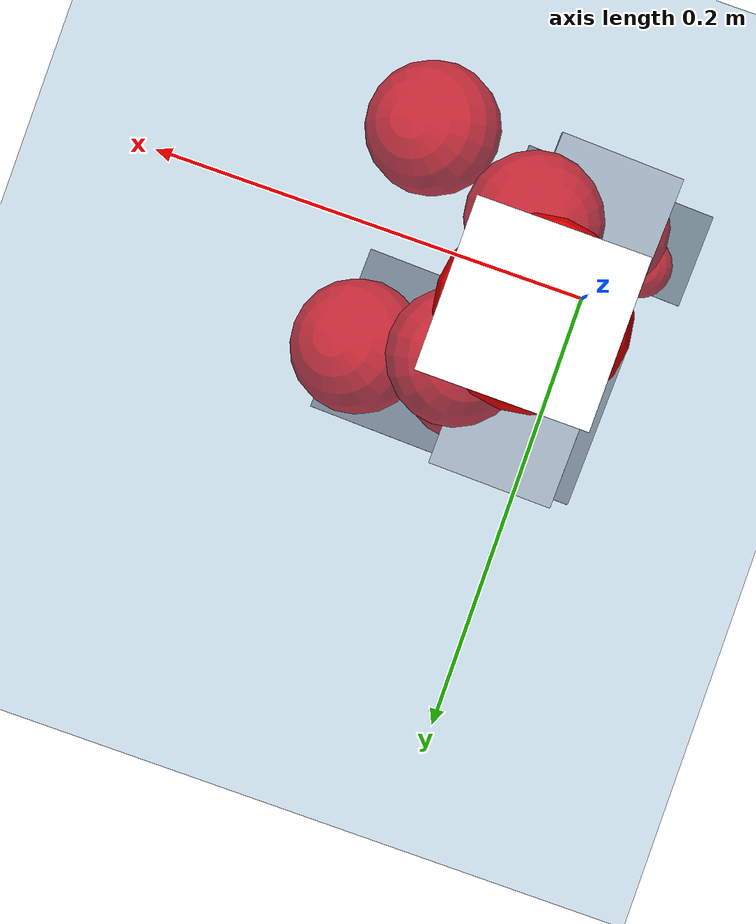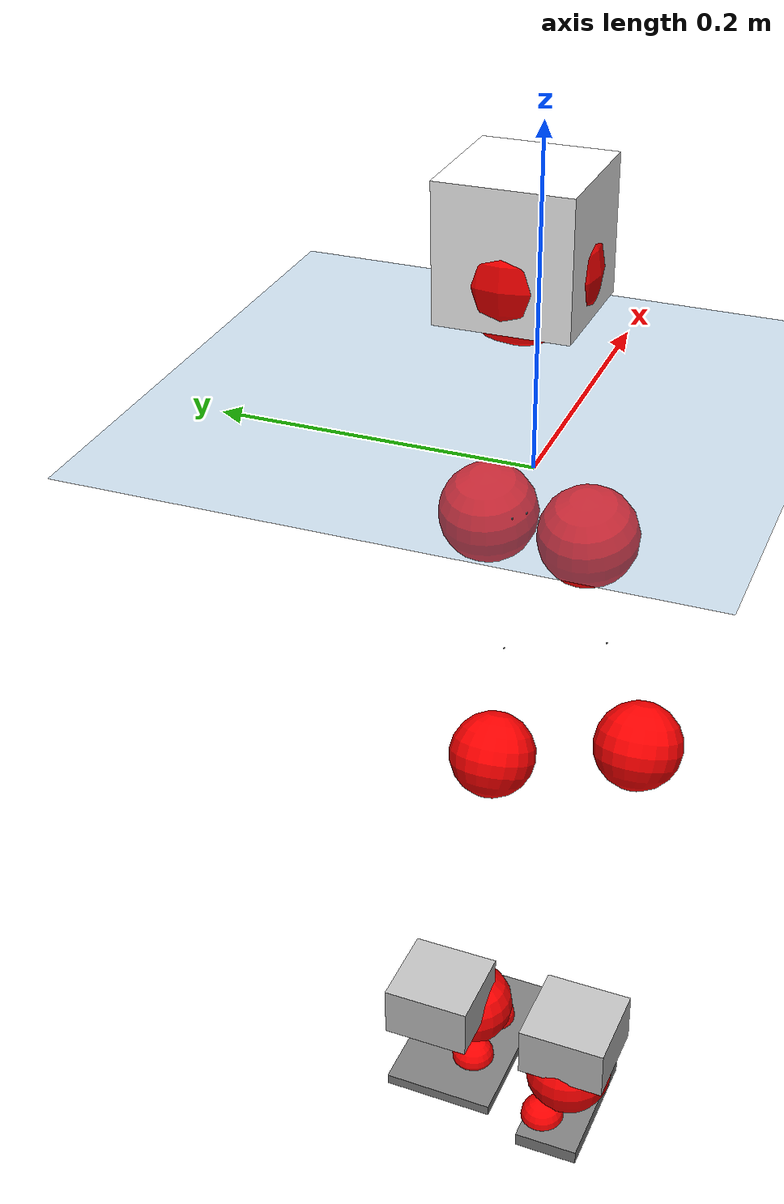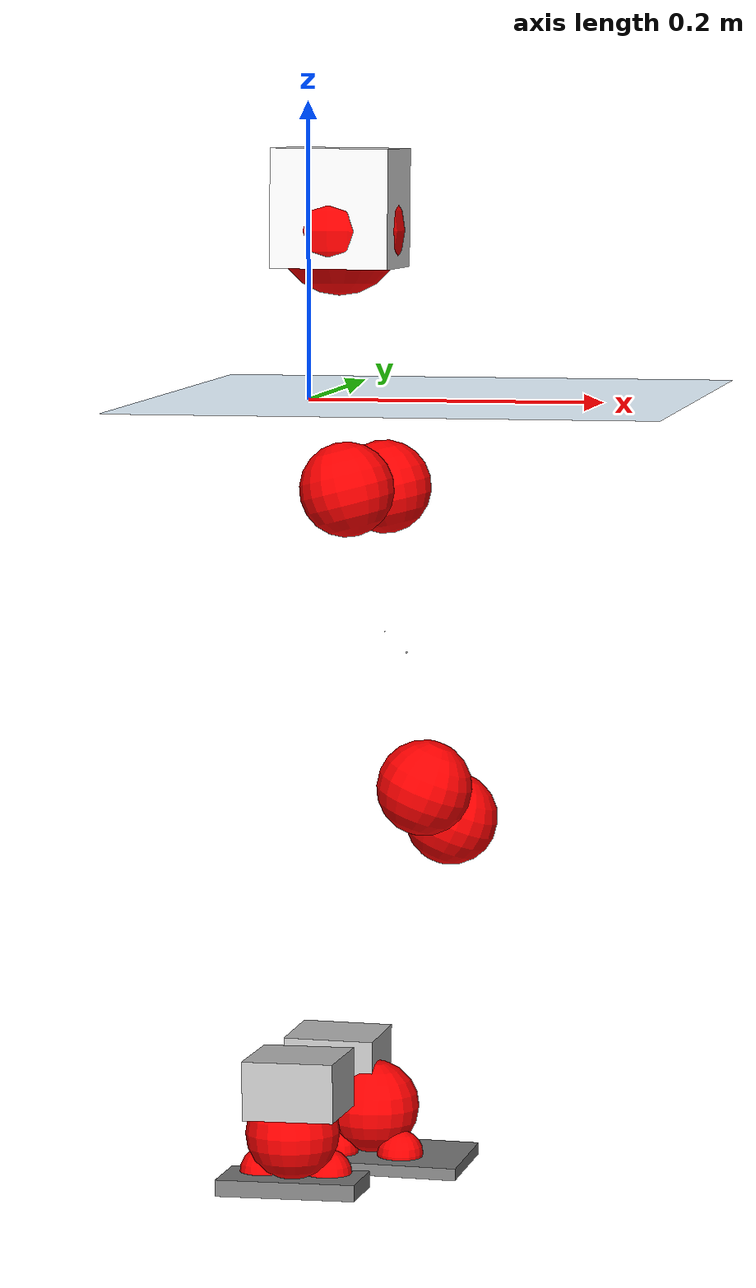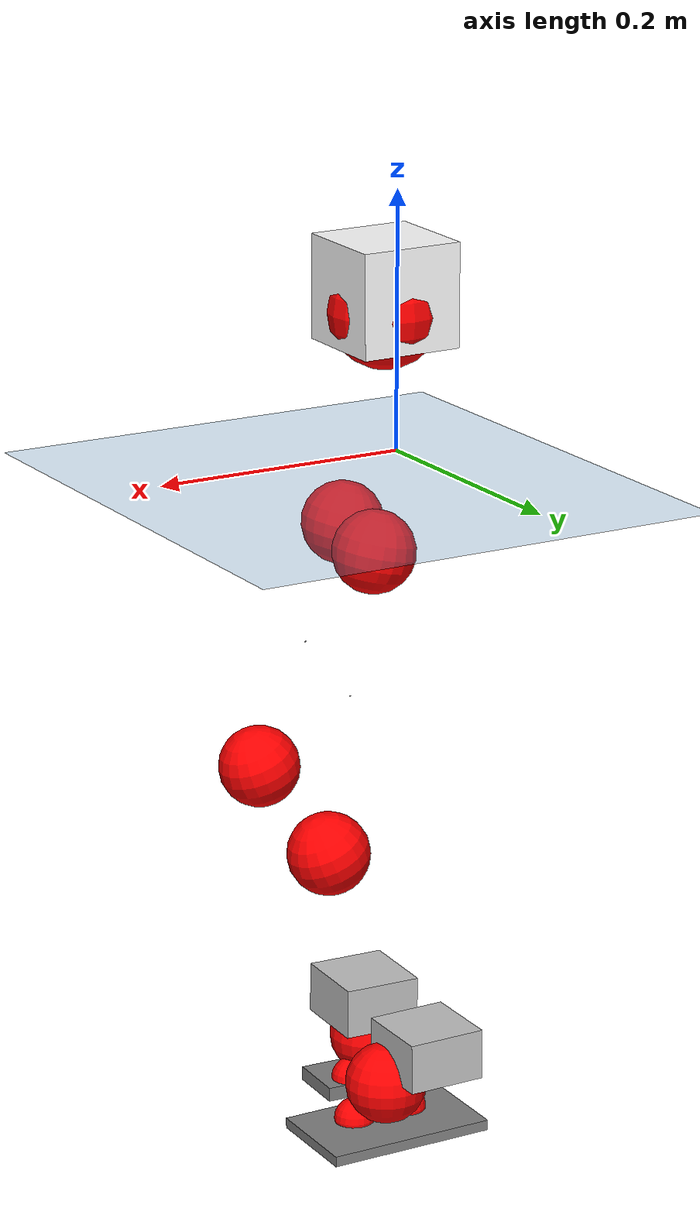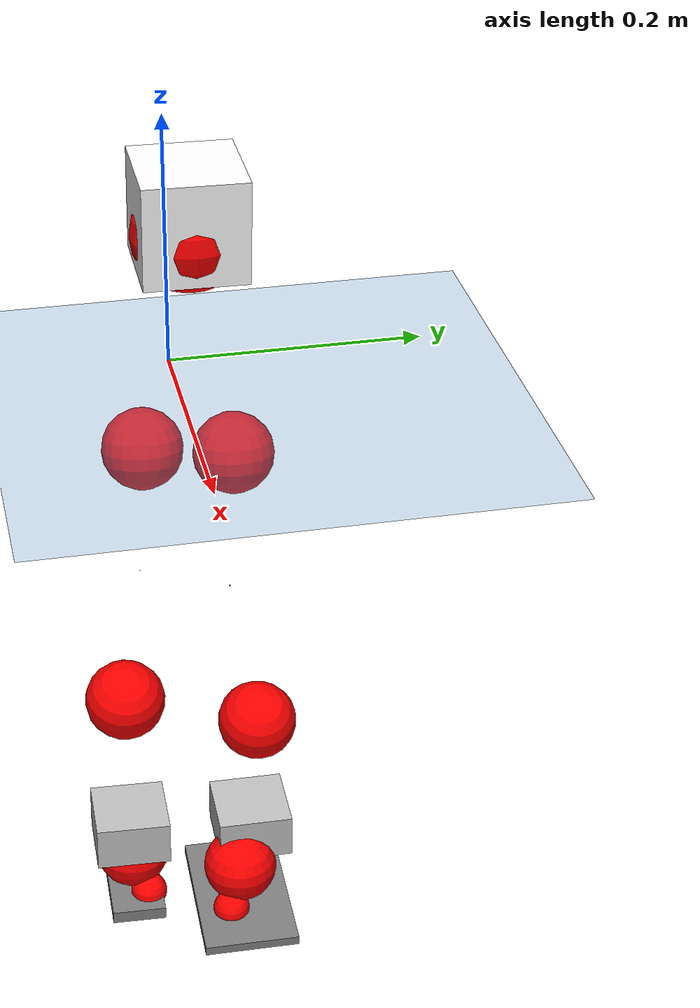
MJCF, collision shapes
<mujoco model="pi_12dof_release_v1">
  <compiler angle="radian" assetdir="assets" balanceinertia="true" inertiafromgeom="false"/>

  <option timestep="0.005" density="1.2" viscosity="2e-05"/>

  <size nkey="1"/>

  <visual>
    <quality shadowsize="8192"/>
    <map shadowclip="0.5"/>
  </visual>

  <default>
    <default class="/">
      <joint armature="0.01" damping="0.01" frictionloss="0.01"/>
      <geom contype="0" conaffinity="0" group="1" solref="-1000 -80"/>
      <site size="0.01 0.005 0.005" group="5"/>
      <general forcelimited="true" biastype="affine" gainprm="20" biasprm="0 -20 -0.5"/>
      <default class="foot">
        <geom size="0.0845 0.036 0.005" type="box" condim="6" group="4" priority="1" friction="0.9 0.2 0.2" solimp="0.015 1 0.005"/>
      </default>
      <default class="reward_collision_sphere">
        <geom group="5" rgba="1 0 0 1"/>
      </default>
    </default>
  </default>

  <asset>
    <texture type="skybox" colorspace="auto" name="//unnamed_texture_0" builtin="gradient" rgb1="0.95 0.95 0.95" rgb2="0.95 0.95 0.95" width="100" height="600"/>
    <texture type="2d" colorspace="auto" name="texplane" builtin="checker" rgb1="0.345 0.575 0.748" rgb2="0.345 0.575 0.748" markrgb="1 1 1" width="512" height="512"/>
    <material name="MatPlane" class="/" texture="texplane" texuniform="true" texrepeat="2 2" specular="0.9"/>
    <mesh name="baselink_1" class="/" file="baselink_1.STL"/>
    <mesh name="r_hip_pitch_link" class="/" file="r_hip_pitch_link.STL"/>
    <mesh name="r_hip_roll_link" class="/" file="r_hip_roll_link.STL"/>
    <mesh name="r_thigh_link" class="/" file="r_thigh_link.STL"/>
    <mesh name="r_calf_link" class="/" file="r_calf_link.STL"/>
    <mesh name="r_ankle_pitch_link" class="/" file="r_ankle_pitch_link.STL"/>
    <mesh name="r_ankle_roll_link" class="/" file="r_ankle_roll_link.STL"/>
    <mesh name="l_hip_pitch_link" class="/" file="l_hip_pitch_link.STL"/>
    <mesh name="l_hip_roll_link" class="/" file="l_hip_roll_link.STL"/>
    <mesh name="l_thigh_link" class="/" file="l_thigh_link.STL"/>
    <mesh name="l_calf_link" class="/" file="l_calf_link.STL"/>
    <mesh name="l_ankle_pitch_link" class="/" file="l_ankle_pitch_link.STL"/>
    <mesh name="l_ankle_roll_link" class="/" file="l_ankle_roll_link.STL"/>
  </asset>

  <worldbody>
    <geom name="floor" class="/" size="100 100 0.125" type="plane" group="0" material="MatPlane"/>
    <light name="toplight_shadow" class="/" pos="0 0 5" dir="0.0990148 0.0990148 -0.990148" type="directional" ambient="0.04 0.04 0.04" diffuse="0.55 0.55 0.55" specular="0.12 0.12 0.12"/>
    <light name="toplight_fill" class="/" pos="0 0 5" dir="0.0990148 0.0990148 -0.990148" type="directional" castshadow="false" ambient="0.04 0.04 0.04" diffuse="0.3 0.3 0.3" specular="0.08 0.08 0.08"/>
    <body name="trunk" pos="0.0178856 0.0136846 0.00976025" quat="0.999971 -0.00449368 0.00465422 -0.00403354">
      <inertial pos="0.019391 0.00491472 0.0640027" quat="0.719963 -0.0204759 0.0225988 0.693342" mass="1.02495" diaginertia="4.88763e-05 0.000571645 0.0246425"/>
      <joint name="//unnamed_joint_0" type="free"/>
      <geom name="//unnamed_geom_1" class="/" type="mesh" density="0" rgba="1 1 1 1" mesh="baselink_1"/>
      <geom name="//unnamed_geom_2" class="/" size="0.0399662 0.0399662 0.0399662" pos="0 0 0.118563" type="box" rgba="1 1 1 1"/>
      <geom name="//unnamed_geom_3" class="reward_collision_sphere" size="0.0439629" pos="0 0 0.103743"/>
      <site name="imu" class="/" pos="-0.0189384 -0.046969 0.0407778" size="0.00799325"/>
      <camera name="track" class="/" pos="0 -1.15779 0" quat="0.707107 0.707107 0 0" mode="trackcom"/>
      <camera name="ego_camera" class="/" pos="0.0252779 0 0.266767" quat="-0.5 -0.5 0.5 0.5"/>
      <body name="r_hip_pitch_link" pos="0.012509 -0.000682734 -0.0587571" quat="0.99111 -0.00219098 -0.133011 -0.00210592">
        <inertial pos="0.0191238 -0.0205186 0.0111925" quat="-0.0345667 0.702616 -0.0437736 0.70938" mass="0.1618" diaginertia="4.06475e-07 6.17746e-06 0.000404086"/>
        <joint name="r_hip_pitch_joint" class="/" pos="0 0 0" axis="-0.0676313 -0.997689 0.00660729" stiffness="0.0884049" range="-1.70011 1.07411" armature="0.00803735" damping="0.00240004" frictionloss="0.00244787"/>
        <geom name="//unnamed_geom_4" class="/" type="mesh" density="0" rgba="0.75294 0.75294 0.75294 1" mesh="r_hip_pitch_link"/>
        <geom name="//unnamed_geom_5" class="/" size="0.000399662 0.000399662 0.000399662" type="box" rgba="0.75294 0.75294 0.75294 1"/>
        <body name="r_hip_roll_link" pos="-0.000637218 -0.0391727 -0.00953067" quat="0.999998 -0.00139681 0.000528935 -0.000942022">
          <inertial pos="-0.0184434 -0.00507829 -0.106741" quat="0.706686 -0.084663 -0.0593254 0.699934" mass="0.210598" diaginertia="1.49629e-06 1.57144e-05 0.000994926"/>
          <joint name="r_hip_roll_joint" class="/" pos="0 0 0" axis="-0.999937 0.00325329 -0.01078" range="0.189377 0.269708" armature="0.015472" damping="0.0710598" frictionloss="0.0064184"/>
          <geom name="//unnamed_geom_6" class="/" type="mesh" density="0" rgba="0.75294 0.75294 0.75294 1" mesh="r_hip_roll_link"/>
          <geom name="//unnamed_geom_7" class="/" size="0.000399662 0.000399662 0.000399662" type="box" rgba="0.75294 0.75294 0.75294 1"/>
          <geom name="//unnamed_geom_8" class="reward_collision_sphere" size="0.031973"/>
          <body name="r_thigh_link" pos="0.0027778 -0.00728456 -0.097885" quat="0.999979 -0.000746187 -0.00296087 -0.00576276">
            <inertial pos="-0.0122589 -0.0107689 -0.0561386" quat="0.764312 0.641126 -0.0429215 -0.054238" mass="0.051055" diaginertia="5.97507e-07 5.23322e-06 0.000477382"/>
            <joint name="r_thigh_joint" class="/" pos="0 0 0" axis="-0.00776016 0.0740786 -0.997222" stiffness="0.0888049" range="-0.265826 0.334433" armature="0.0150236" damping="0" frictionloss="0.00981261"/>
            <geom name="//unnamed_geom_9" class="/" type="mesh" density="0" rgba="0.75294 0.75294 0.75294 1" mesh="r_thigh_link"/>
            <geom name="//unnamed_geom_10" class="/" size="0.000399662 0.000399662 0.000399662" type="box" rgba="0.75294 0.75294 0.75294 1"/>
            <body name="r_calf_link" pos="0.00329666 -0.0173871 -0.106417" quat="0.94785 0.00496783 0.318671 0.0018887">
              <inertial pos="-0.0150195 -0.00880432 -0.103602" quat="0.999863 0.0103995 0.00872965 -0.00946947" mass="0.258916" diaginertia="1.37105e-05 0.000206071 0.00120144"/>
              <joint name="r_calf_joint" class="/" pos="0 0 0" axis="-0.00872815 -0.999916 -0.00961161" range="-1.55711 0.971525" armature="0" damping="0.0785855" frictionloss="0.00046736"/>
              <geom name="//unnamed_geom_11" class="/" type="mesh" density="0" rgba="0.75294 0.75294 0.75294 1" mesh="r_calf_link"/>
              <geom name="//unnamed_geom_12" class="/" size="0.000399662 0.000399662 0.000399662" type="box" rgba="0.75294 0.75294 0.75294 1"/>
              <geom name="//unnamed_geom_13" class="reward_collision_sphere" size="0.031973"/>
              <body name="r_ankle_pitch_link" pos="-0.00440581 0.0082661 -0.22396" quat="0.980543 -0.00358344 -0.196126 -0.00755482">
                <inertial pos="0.0155555 0.0206221 0.00832579" quat="-0.00521038 0.70452 0.0268965 0.709155" mass="0.124147" diaginertia="1.44159e-06 1.81949e-05 0.00113818"/>
                <joint name="r_ankle_pitch_joint" class="/" pos="0 0 0" axis="0.0920745 -0.995682 0.0118132" stiffness="0.0876477" range="-0.993891 0.207744" armature="0.0100298" damping="0" frictionloss="0.0133633"/>
                <geom name="//unnamed_geom_14" class="/" type="mesh" density="0" rgba="0.75294 0.75294 0.75294 1" mesh="r_ankle_pitch_link"/>
                <geom name="//unnamed_geom_15" class="/" size="0.0311737 0.031973 0.0199831" type="box" rgba="0.75294 0.75294 0.75294 1"/>
                <body name="r_ankle_roll_link" pos="0.0121205 0.00206692 -0.00381625" quat="1 0.000381611 -0.000217015 0.000627433">
                  <inertial pos="-0.0194864 0.00191078 -0.0131992" quat="0.542792 0.425183 0.429598 0.583131" mass="0.192183" diaginertia="3.18149e-06 6.356e-05 0.00154747"/>
                  <joint name="r_ankle_roll_joint" class="/" pos="0 0 0" axis="-0.995027 0.021581 0.0972388" range="-0.050105 0.464042" armature="0.00595934" damping="0.0617676" frictionloss="0.00665007"/>
                  <geom name="//unnamed_geom_16" class="/" type="mesh" density="0" rgba="0.75294 0.75294 0.75294 1" mesh="r_ankle_roll_link"/>
                  <geom name="//unnamed_geom_17" class="/" type="mesh" rgba="0.75294 0.75294 0.75294 1" mesh="r_ankle_roll_link"/>
                  <geom name="right_foot" class="foot" size="0.0481166 0.0232456 0.00558714" pos="-0.017189 0 -0.0652097"/>
                  <geom name="//unnamed_geom_19" class="reward_collision_sphere" size="0.031973" pos="-0.0168519 0 -0.0296408"/>
                  <geom name="//unnamed_geom_20" class="reward_collision_sphere" size="0.0159865" pos="0.00505558 0.0115779 -0.0592816"/>
                  <geom name="//unnamed_geom_21" class="reward_collision_sphere" size="0.0159865" pos="-0.0404446 0.0115779 -0.0592816"/>
                  <site name="right_foot" class="foot" pos="-0.017189 0 -0.0652097" size="0.00799325"/>
                </body>
              </body>
            </body>
          </body>
        </body>
      </body>
      <body name="l_hip_pitch_link" pos="0.00659635 0.00680256 -0.0610185" quat="0.993158 -0.00552567 -0.116642 0.000673608">
        <inertial pos="-0.0176339 0.0386984 -0.00565197" quat="-0.0396016 0.706492 0.0329933 0.705841" mass="0.170688" diaginertia="5.22461e-07 5.31912e-06 0.000748524"/>
        <joint name="l_hip_pitch_joint" class="/" pos="0 0 0" axis="0.00815427 0.99949 0.0308622" stiffness="0.0454173" range="-1.48978 1.68179" armature="0.00215934" damping="0.074039" frictionloss="0.00393042"/>
        <geom name="//unnamed_geom_22" class="/" type="mesh" density="0" rgba="0.75294 0.75294 0.75294 1" mesh="l_hip_pitch_link"/>
        <geom name="//unnamed_geom_23" class="/" size="0.000399662 0.000399662 0.000399662" type="box" rgba="0.75294 0.75294 0.75294 1"/>
        <body name="l_hip_roll_link" pos="0.0172738 0.0226372 -0.0141174" quat="0.999962 0.00703101 0.00155322 -0.00490933">
          <inertial pos="0.00288796 0.00693531 -0.0833716" quat="0.642026 -0.102965 -0.0693329 0.756567" mass="0.239264" diaginertia="1.3093e-06 2.15754e-05 0.000822442"/>
          <joint name="l_hip_roll_joint" class="/" pos="0 0 0" axis="-0.998553 0.0174181 0.0508855" range="-0.329476 0.310482" armature="0.00254461" damping="0.0979551" frictionloss="0.00354886"/>
          <geom name="//unnamed_geom_24" class="/" type="mesh" density="0" rgba="0.75294 0.75294 0.75294 1" mesh="l_hip_roll_link"/>
          <geom name="//unnamed_geom_25" class="/" size="0.000399662 0.000399662 0.000399662" type="box" rgba="0.75294 0.75294 0.75294 1"/>
          <geom name="//unnamed_geom_26" class="reward_collision_sphere" size="0.031973"/>
          <body name="l_thigh_link" pos="-0.00880423 -0.00641102 -0.113627" quat="0.999999 -0.000638639 -0.00128569 -0.000884078">
            <inertial pos="0.000921991 0.00151901 -0.0825583" quat="0.680303 0.732902 0.00539128 0.00366477" mass="0.0579305" diaginertia="5.40868e-07 5.64284e-06 0.000422306"/>
            <joint name="l_thigh_joint" class="/" pos="0 0 0" axis="0.0273099 0.0252907 -0.999307" range="-0.639058 0.410895" armature="0.0132637" damping="0.00354297" frictionloss="0.0104008"/>
            <geom name="//unnamed_geom_27" class="/" type="mesh" density="0" rgba="0.75294 0.75294 0.75294 1" mesh="l_thigh_link"/>
            <geom name="//unnamed_geom_28" class="/" size="0.000399662 0.000399662 0.000399662" type="box" rgba="0.75294 0.75294 0.75294 1"/>
            <body name="l_calf_link" pos="0.00145266 0.0174774 -0.119072" quat="0.947958 0.00496684 0.31832 -0.00474406">
              <inertial pos="-0.000102761 -0.012746 -0.104086" quat="0.996706 -0.0535934 0.0592512 -0.0139321" mass="0.427398" diaginertia="1.35551e-05 0.000199447 0.00146291"/>
              <joint name="l_calf_joint" class="/" pos="0 0 0" axis="-0.00814177 0.999926 -0.00907965" stiffness="0.0355526" range="-0.514865 1.5325" armature="0.0156069" damping="0.0261748" frictionloss="0.00076686"/>
              <geom name="//unnamed_geom_29" class="/" type="mesh" density="0" rgba="0.75294 0.75294 0.75294 1" mesh="l_calf_link"/>
              <geom name="//unnamed_geom_30" class="/" size="0.000399662 0.000399662 0.000399662" type="box" rgba="0.75294 0.75294 0.75294 1"/>
              <geom name="//unnamed_geom_31" class="reward_collision_sphere" size="0.031973"/>
              <body name="l_ankle_pitch_link" pos="-0.00339342 0.0067263 -0.192097" quat="0.979073 -0.000821469 -0.203502 0.0016426">
                <inertial pos="0.00302691 0.0105144 -0.00425341" quat="-0.0114224 0.710184 -0.0051253 0.703905" mass="0.114266" diaginertia="1.68597e-06 1.66748e-05 0.00116026"/>
                <joint name="l_ankle_pitch_joint" class="/" pos="0 0 0" axis="-5.63541e-05 0.999464 0.0327427" stiffness="0.025665" range="-0.378341 1.36194" armature="0.00878462" damping="0.0153774" frictionloss="0.00391259"/>
                <geom name="//unnamed_geom_32" class="/" type="mesh" density="0" rgba="0.75294 0.75294 0.75294 1" mesh="l_ankle_pitch_link"/>
                <geom name="//unnamed_geom_33" class="/" size="0.0311737 0.031973 0.0199831" type="box" rgba="0.75294 0.75294 0.75294 1"/>
                <body name="l_ankle_roll_link" pos="0.0453543 -0.0142545 0.00149191" quat="0.999994 0.0010179 -0.000151857 -0.00322239">
                  <inertial pos="-0.0272499 0.00122147 -0.0332282" quat="0.576296 0.424916 0.392423 0.577351" mass="0.248931" diaginertia="5.15541e-06 9.67951e-05 0.00207574"/>
                  <joint name="l_ankle_roll_joint" class="/" pos="0 0 0" axis="-0.997167 -0.0748492 -0.0074095" stiffness="0.0612738" range="0.00790876 0.159316" armature="0.00622243" damping="0" frictionloss="0.00485449"/>
                  <geom name="//unnamed_geom_34" class="/" type="mesh" density="0" rgba="0.75294 0.75294 0.75294 1" mesh="l_ankle_roll_link"/>
                  <geom name="//unnamed_geom_35" class="/" type="mesh" rgba="0.75294 0.75294 0.75294 1" mesh="l_ankle_roll_link"/>
                  <geom name="left_foot" class="foot" size="0.0670566 0.0410306 0.00409435" pos="-0.017189 0 -0.0652097"/>
                  <geom name="//unnamed_geom_37" class="reward_collision_sphere" size="0.031973" pos="-0.0168519 0 -0.0296408"/>
                  <geom name="//unnamed_geom_38" class="reward_collision_sphere" size="0.0159865" pos="0.00505558 -0.0115779 -0.0592816"/>
                  <geom name="//unnamed_geom_39" class="reward_collision_sphere" size="0.0159865" pos="-0.0404446 -0.0115779 -0.0592816"/>
                  <site name="left_foot" class="foot" pos="-0.017189 0 -0.0652097" size="0.00799325"/>
                </body>
              </body>
            </body>
          </body>
        </body>
      </body>
    </body>
  </worldbody>

  <contact>
    <pair class="/" geom1="floor" geom2="right_foot" name="//unnamed_contact_1"/>
    <pair class="/" geom1="floor" geom2="left_foot" name="//unnamed_contact_0"/>
  </contact>

  <actuator>
    <general name="r_hip_pitch_joint" class="/" joint="r_hip_pitch_joint" forcerange="-21.4074 21.4074" gainprm="13.4963" biasprm="0 -13.4963 -0.520717"/>
    <general name="r_hip_roll_joint" class="/" joint="r_hip_roll_joint" forcerange="-17.975 17.975" gainprm="13.4963" biasprm="0 -13.4963 -0.520717"/>
    <general name="r_thigh_joint" class="/" joint="r_thigh_joint" forcerange="-18.3587 18.3587" gainprm="13.4963" biasprm="0 -13.4963 -0.520717"/>
    <general name="r_calf_joint" class="/" joint="r_calf_joint" forcerange="-20.975 20.975" gainprm="13.4963" biasprm="0 -13.4963 -0.520717"/>
    <general name="r_ankle_pitch_joint" class="/" joint="r_ankle_pitch_joint" forcerange="-12.3522 12.3522" gainprm="13.4963" biasprm="0 -13.4963 -0.520717"/>
    <general name="r_ankle_roll_joint" class="/" joint="r_ankle_roll_joint" forcerange="-21.052 21.052" gainprm="13.4963" biasprm="0 -13.4963 -0.520717"/>
    <general name="l_hip_pitch_joint" class="/" joint="l_hip_pitch_joint" forcerange="-19.6816 19.6816" gainprm="13.4963" biasprm="0 -13.4963 -0.520717"/>
    <general name="l_hip_roll_joint" class="/" joint="l_hip_roll_joint" forcerange="-23.9847 23.9847" gainprm="13.4963" biasprm="0 -13.4963 -0.520717"/>
    <general name="l_thigh_joint" class="/" joint="l_thigh_joint" forcerange="-16.2879 16.2879" gainprm="13.4963" biasprm="0 -13.4963 -0.520717"/>
    <general name="l_calf_joint" class="/" joint="l_calf_joint" forcerange="-4.8765 4.8765" gainprm="13.4963" biasprm="0 -13.4963 -0.520717"/>
    <general name="l_ankle_pitch_joint" class="/" joint="l_ankle_pitch_joint" forcerange="-17.7155 17.7155" gainprm="13.4963" biasprm="0 -13.4963 -0.520717"/>
    <general name="l_ankle_roll_joint" class="/" joint="l_ankle_roll_joint" forcerange="-25.792 25.792" gainprm="13.4963" biasprm="0 -13.4963 -0.520717"/>
  </actuator>

  <sensor>
    <gyro site="imu" name="imu_angular_velocity"/>
    <velocimeter site="imu" name="imu_linear_velocity"/>
    <framelinvel objtype="site" objname="left_foot" name="left_foot_global_linear_velocity"/>
    <framelinvel objtype="site" objname="right_foot" name="right_foot_global_linear_velocity"/>
  </sensor>

  <keyframe>
    <key name="home" qpos="0 0 0.291 1 0 0 0 0.4 0 0 -0.8 0.4 0 -0.4 0 0 0.8 -0.4 0"/>
  </keyframe>
</mujoco>
